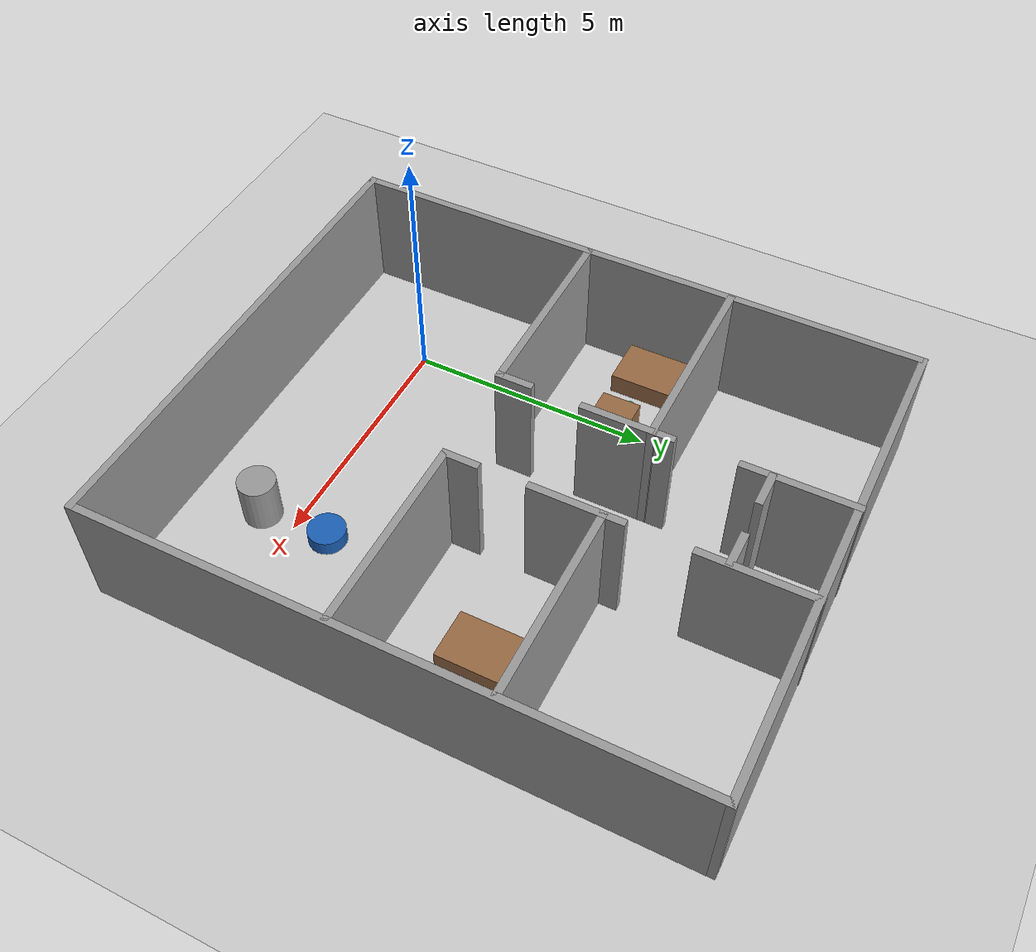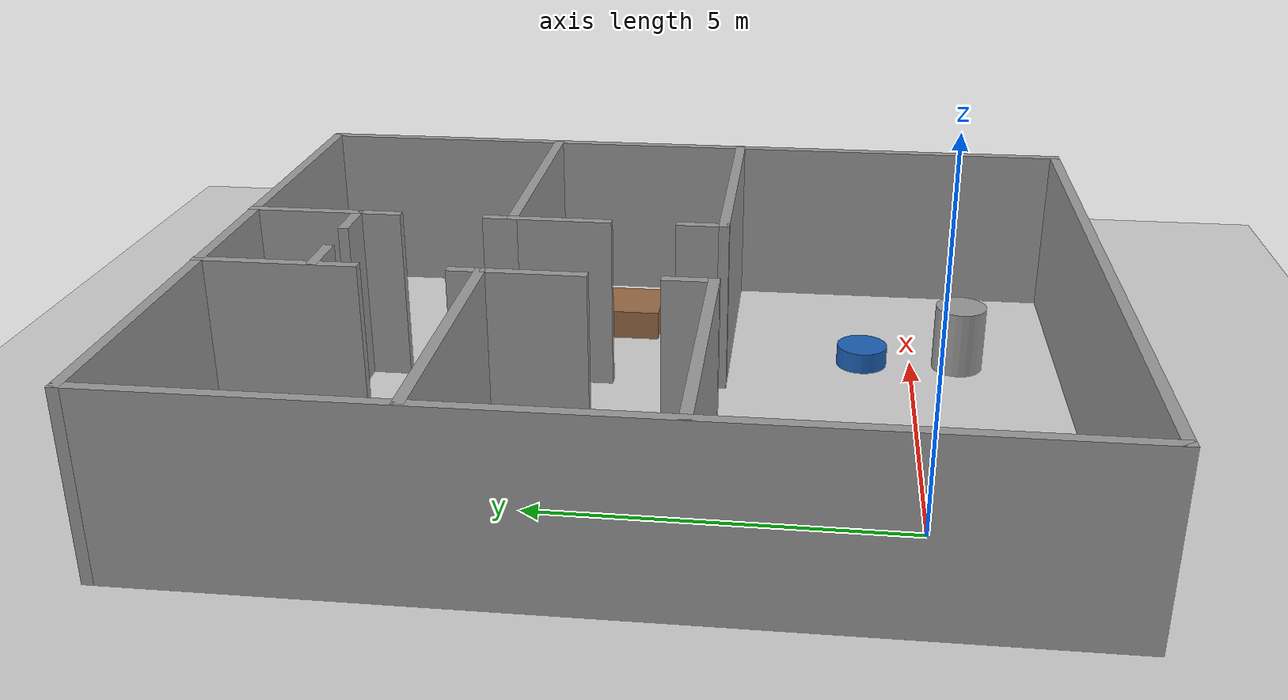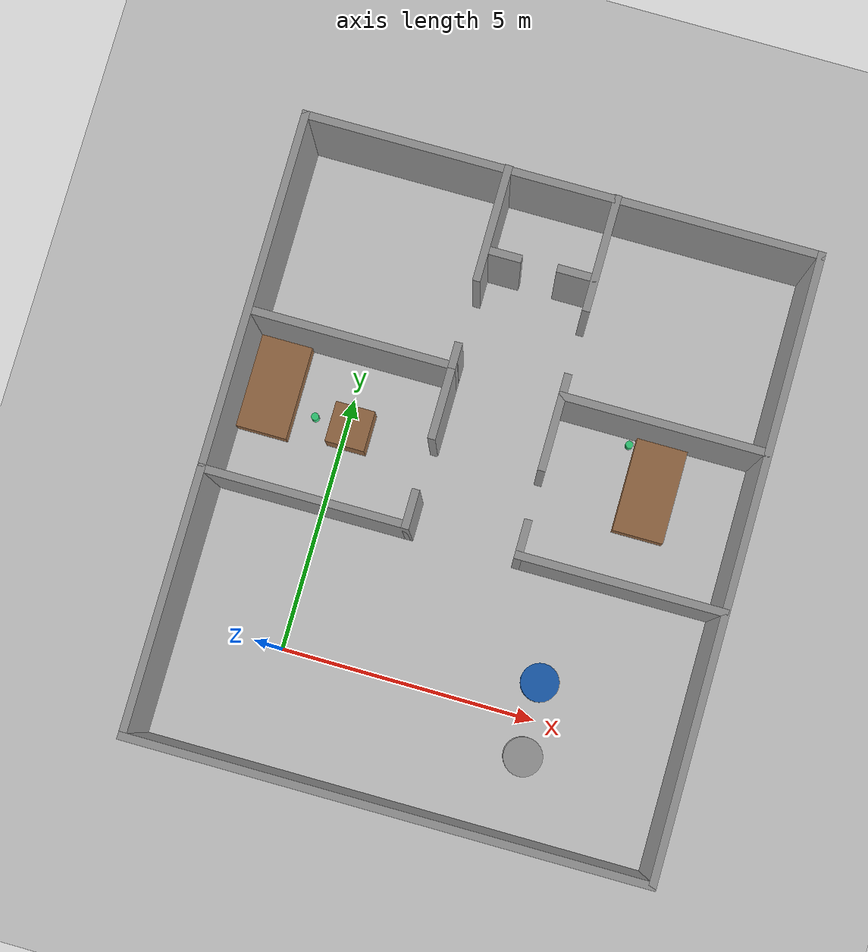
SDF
<sdf version="1.7">
 <world name="default">
  <model name="ground_plane">
   <static>1</static>
   <link name="link">
    <collision name="collision">
     <geometry><plane><normal>0 0 1</normal><size>100 100</size></plane></geometry>
     <surface><friction><ode><mu>100</mu><mu2>50</mu2></ode></friction></surface>
    </collision>
    <visual name="visual">
     <cast_shadows>0</cast_shadows>
     <geometry><plane><normal>0 0 1</normal><size>100 100</size></plane></geometry>
     <material>
      <script><uri>file://media/materials/scripts/gazebo.material</uri><name>Gazebo/Grey</name></script>
     </material>
    </visual>
   </link>
  </model>
  <model name="Untitled">
   <pose>4.12572 3.66792 0 0 -0 0.003554</pose>
   <link name="Wall_0">
    <collision name="Wall_0_Collision">
     <geometry><box><size>10 0.15 2.5</size></box></geometry>
     <pose>0 0 1.25 0 -0 0</pose>
    </collision>
    <visual name="Wall_0_Visual">
     <pose>0 0 1.25 0 -0 0</pose>
     <geometry><box><size>10 0.15 2.5</size></box></geometry>
     <material>
      <script><uri>file://media/materials/scripts/gazebo.material</uri><name>Gazebo/Grey</name></script>
      <ambient>1 1 1 1</ambient>
     </material>
     <meta><layer>0</layer></meta>
    </visual>
    <pose>-1.3075 -5.93156 0 0 -0 3.3e-05</pose>
   </link>
   <link name="Wall_14">
    <collision name="Wall_14_Collision">
     <geometry><box><size>4 0.15 2.5</size></box></geometry>
     <pose>0 0 1.25 0 -0 0</pose>
    </collision>
    <visual name="Wall_14_Visual">
     <pose>0 0 1.25 0 -0 0</pose>
     <geometry><box><size>4 0.15 2.5</size></box></geometry>
     <material>
      <script><uri>file://media/materials/scripts/gazebo.material</uri><name>Gazebo/Grey</name></script>
      <ambient>1 1 1 1</ambient>
     </material>
     <meta><layer>0</layer></meta>
    </visual>
    <pose>1.65589 2.13135 0 0 -0 3.14159</pose>
   </link>
   <link name="Wall_17">
    <collision name="Wall_17_Collision">
     <geometry><box><size>4.00005 0.15 2.5</size></box></geometry>
     <pose>0 0 1.25 0 -0 0</pose>
    </collision>
    <visual name="Wall_17_Visual">
     <pose>0 0 1.25 0 -0 0</pose>
     <geometry><box><size>4.00005 0.15 2.5</size></box></geometry>
     <material>
      <script><uri>file://media/materials/scripts/gazebo.material</uri><name>Gazebo/Grey</name></script>
      <ambient>1 1 1 1</ambient>
     </material>
     <meta><layer>0</layer></meta>
    </visual>
    <pose>-4.27584 2.13172 0 0 -0 0</pose>
   </link>
   <link name="Wall_28">
    <collision name="Wall_28_Collision">
     <geometry><box><size>2.25 0.15 2.5</size></box></geometry>
     <pose>0 0 1.25 0 -0 0</pose>
    </collision>
    <visual name="Wall_28_Visual">
     <pose>0 0 1.25 0 -0 0</pose>
     <geometry><box><size>2.25 0.15 2.5</size></box></geometry>
     <material>
      <script><uri>file://media/materials/scripts/gazebo.material</uri><name>Gazebo/Grey</name></script>
      <ambient>1 1 1 1</ambient>
     </material>
     <meta><layer>0</layer></meta>
    </visual>
    <pose>-2.35084 4.88172 0 0 -0 1.5708</pose>
   </link>
   <link name="Wall_31">
    <collision name="Wall_31_Collision">
     <geometry><box><size>2.25 0.15 2.5</size></box></geometry>
     <pose>0 0 1.25 0 -0 0</pose>
    </collision>
    <visual name="Wall_31_Visual">
     <pose>0 0 1.25 0 -0 0</pose>
     <geometry><box><size>2.25 0.15 2.5</size></box></geometry>
     <material>
      <script><uri>file://media/materials/scripts/gazebo.material</uri><name>Gazebo/Grey</name></script>
      <ambient>1 1 1 1</ambient>
     </material>
     <meta><layer>0</layer></meta>
    </visual>
    <pose>-0.269114 4.88135 0 0 -0 1.5708</pose>
   </link>
   <link name="Wall_33">
    <collision name="Wall_33_Collision">
     <geometry><box><size>0.75 0.15 2.5</size></box></geometry>
     <pose>0 0 1.25 0 -0 0</pose>
    </collision>
    <visual name="Wall_33_Visual">
     <pose>0 0 1.25 0 -0 0</pose>
     <geometry><box><size>0.75 0.15 2.5</size></box></geometry>
     <material>
      <script><uri>file://media/materials/scripts/gazebo.material</uri><name>Gazebo/Grey</name></script>
      <ambient>1 1 1 1</ambient>
     </material>
     <meta><layer>0</layer></meta>
    </visual>
    <pose>-2.03024 4.37324 0 0 -0 0</pose>
   </link>
   <link name="Wall_36">
    <collision name="Wall_36_Collision">
     <geometry><box><size>0.75 0.15 2.5</size></box></geometry>
     <pose>0 0 1.25 0 -0 0</pose>
    </collision>
    <visual name="Wall_36_Visual">
     <pose>0 0 1.25 0 -0 0</pose>
     <geometry><box><size>0.75 0.15 2.5</size></box></geometry>
     <material>
      <script><uri>file://media/materials/scripts/gazebo.material</uri><name>Gazebo/Grey</name></script>
      <ambient>1 1 1 1</ambient>
     </material>
     <meta><layer>0</layer></meta>
    </visual>
    <pose>-0.612674 4.39073 0 0 -0 3.14159</pose>
   </link>
   <link name="Wall_4">
    <collision name="Wall_4_Collision">
     <geometry><box><size>12 0.15 2.5</size></box></geometry>
     <pose>0 0 1.25 0 -0 0</pose>
    </collision>
    <visual name="Wall_4_Visual">
     <pose>0 0 1.25 0 -0 0</pose>
     <geometry><box><size>12 0.15 2.5</size></box></geometry>
     <material>
      <script><uri>file://media/materials/scripts/gazebo.material</uri><name>Gazebo/Grey</name></script>
      <ambient>1 1 1 1</ambient>
     </material>
     <meta><layer>0</layer></meta>
    </visual>
    <pose>-6.2325 -0.006559 0 0 -0 1.57077</pose>
   </link>
   <link name="Wall_40">
    <collision name="Wall_40_Collision">
     <geometry><box><size>4 0.15 2.5</size></box></geometry>
     <pose>0 0 1.25 0 -0 0</pose>
    </collision>
    <visual name="Wall_40_Visual">
     <pose>0 0 1.25 0 -0 0</pose>
     <geometry><box><size>4 0.15 2.5</size></box></geometry>
     <material>
      <script><uri>file://media/materials/scripts/gazebo.material</uri><name>Gazebo/Grey</name></script>
      <ambient>1 1 1 1</ambient>
     </material>
     <meta><layer>0</layer></meta>
    </visual>
    <pose>-4.29477 -0.903426 0 0 -0 0</pose>
   </link>
   <link name="Wall_42">
    <collision name="Wall_42_Collision">
     <geometry><box><size>4 0.15 2.5</size></box></geometry>
     <pose>0 0 1.25 0 -0 0</pose>
    </collision>
    <visual name="Wall_42_Visual">
     <pose>0 0 1.25 0 -0 0</pose>
     <geometry><box><size>4 0.15 2.5</size></box></geometry>
     <material>
      <script><uri>file://media/materials/scripts/gazebo.material</uri><name>Gazebo/Grey</name></script>
      <ambient>1 1 1 1</ambient>
     </material>
     <meta><layer>0</layer></meta>
    </visual>
    <pose>1.66772 -0.885502 0 0 -0 3.14159</pose>
   </link>
   <link name="Wall_49">
    <collision name="Wall_49_Collision">
     <geometry><box><size>1.5 0.15 2.5</size></box></geometry>
     <pose>0 0 1.25 0 -0 0</pose>
    </collision>
    <visual name="Wall_49_Visual">
     <pose>0 0 1.25 0 -0 0</pose>
     <geometry><box><size>1.5 0.15 2.5</size></box></geometry>
     <material>
      <script><uri>file://media/materials/scripts/gazebo.material</uri><name>Gazebo/Grey</name></script>
      <ambient>1 1 1 1</ambient>
     </material>
     <meta><layer>0</layer></meta>
    </visual>
    <pose>-2.35084 1.47683 0 0 -0 -1.5708</pose>
   </link>
   <link name="Wall_51">
    <collision name="Wall_51_Collision">
     <geometry><box><size>1.5 0.15 2.5</size></box></geometry>
     <pose>0 0 1.25 0 -0 0</pose>
    </collision>
    <visual name="Wall_51_Visual">
     <pose>0 0 1.25 0 -0 0</pose>
     <geometry><box><size>1.5 0.15 2.5</size></box></geometry>
     <material>
      <script><uri>file://media/materials/scripts/gazebo.material</uri><name>Gazebo/Grey</name></script>
      <ambient>1 1 1 1</ambient>
     </material>
     <meta><layer>0</layer></meta>
    </visual>
    <pose>-0.269114 1.45635 0 0 -0 -1.5708</pose>
   </link>
   <link name="Wall_53">
    <collision name="Wall_53_Collision">
     <geometry><box><size>0.5 0.15 2.5</size></box></geometry>
     <pose>0 0 1.25 0 -0 0</pose>
    </collision>
    <visual name="Wall_53_Visual">
     <pose>0 0 1.25 0 -0 0</pose>
     <geometry><box><size>0.5 0.15 2.5</size></box></geometry>
     <material>
      <script><uri>file://media/materials/scripts/gazebo.material</uri><name>Gazebo/Grey</name></script>
      <ambient>1 1 1 1</ambient>
     </material>
     <meta><layer>0</layer></meta>
    </visual>
    <pose>-2.35084 2.32683 0 0 -0 1.5708</pose>
   </link>
   <link name="Wall_55">
    <collision name="Wall_55_Collision">
     <geometry><box><size>0.5 0.15 2.5</size></box></geometry>
     <pose>0 0 1.25 0 -0 0</pose>
    </collision>
    <visual name="Wall_55_Visual">
     <pose>0 0 1.25 0 -0 0</pose>
     <geometry><box><size>0.5 0.15 2.5</size></box></geometry>
     <material>
      <script><uri>file://media/materials/scripts/gazebo.material</uri><name>Gazebo/Grey</name></script>
      <ambient>1 1 1 1</ambient>
     </material>
     <meta><layer>0</layer></meta>
    </visual>
    <pose>-0.269114 2.30635 0 0 -0 1.5708</pose>
   </link>
   <link name="Wall_57">
    <collision name="Wall_57_Collision">
     <geometry><box><size>0.75 0.15 2.5</size></box></geometry>
     <pose>0 0 1.25 0 -0 0</pose>
    </collision>
    <visual name="Wall_57_Visual">
     <pose>0 0 1.25 0 -0 0</pose>
     <geometry><box><size>0.75 0.15 2.5</size></box></geometry>
     <material>
      <script><uri>file://media/materials/scripts/gazebo.material</uri><name>Gazebo/Grey</name></script>
      <ambient>1 1 1 1</ambient>
     </material>
     <meta><layer>0</layer></meta>
    </visual>
    <pose>-2.36977 -0.603426 0 0 -0 1.5708</pose>
   </link>
   <link name="Wall_59">
    <collision name="Wall_59_Collision">
     <geometry><box><size>0.75 0.15 2.5</size></box></geometry>
     <pose>0 0 1.25 0 -0 0</pose>
    </collision>
    <visual name="Wall_59_Visual">
     <pose>0 0 1.25 0 -0 0</pose>
     <geometry><box><size>0.75 0.15 2.5</size></box></geometry>
     <material>
      <script><uri>file://media/materials/scripts/gazebo.material</uri><name>Gazebo/Grey</name></script>
      <ambient>1 1 1 1</ambient>
     </material>
     <meta><layer>0</layer></meta>
    </visual>
    <pose>-0.257281 -0.585502 0 0 -0 1.5708</pose>
   </link>
   <link name="Wall_6">
    <collision name="Wall_6_Collision">
     <geometry><box><size>12 0.15 2.5</size></box></geometry>
     <pose>0 0 1.25 0 -0 0</pose>
    </collision>
    <visual name="Wall_6_Visual">
     <pose>0 0 1.25 0 -0 0</pose>
     <geometry><box><size>12 0.15 2.5</size></box></geometry>
     <material>
      <script><uri>file://media/materials/scripts/gazebo.material</uri><name>Gazebo/Grey</name></script>
      <ambient>1 1 1 1</ambient>
     </material>
     <meta><layer>0</layer></meta>
    </visual>
    <pose>3.61766 -0.006398 0 0 -0 1.5708</pose>
   </link>
   <link name="Wall_9">
    <collision name="Wall_9_Collision">
     <geometry><box><size>10.0003 0.15 2.5</size></box></geometry>
     <pose>0 0 1.25 0 -0 0</pose>
    </collision>
    <visual name="Wall_9_Visual">
     <pose>0 0 1.25 0 -0 0</pose>
     <geometry><box><size>10.0003 0.15 2.5</size></box></geometry>
     <material>
      <script><uri>file://media/materials/scripts/gazebo.material</uri><name>Gazebo/Grey</name></script>
      <ambient>1 1 1 1</ambient>
     </material>
     <meta><layer>0</layer></meta>
    </visual>
    <pose>-1.30734 5.9186 0 0 -0 0</pose>
   </link>
   <static>1</static>
  </model>
  <model name="unit_cylinder">
   <pose>4.96851 -0.700253 0.491738 0 -0 0</pose>
   <link name="link">
    <inertial>
     <mass>1</mass>
     <inertia><ixx>0.145833</ixx><ixy>0</ixy><ixz>0</ixz><iyy>0.145833</iyy><iyz>0</iyz><izz>0.125</izz></inertia>
    </inertial>
    <collision name="collision">
     <geometry><cylinder><radius>0.373748</radius><length>0.983494</length></cylinder></geometry>
    </collision>
    <visual name="visual">
     <geometry><cylinder><radius>0.373748</radius><length>0.983494</length></cylinder></geometry>
     <material>
      <script><name>Gazebo/Grey</name><uri>file://media/materials/scripts/gazebo.material</uri></script>
     </material>
    </visual>
   </link>
  </model>
  <model name="lv_lajitong">
   <link name="link">
    <inertial>
     <mass>1</mass>
     <inertia><ixx>0.145833</ixx><ixy>0</ixy><ixz>0</ixz><iyy>0.145833</iyy><iyz>0</iyz><izz>0.125</izz></inertia>
    </inertial>
    <visual name="visual">
     <geometry><cylinder><radius>0.0738659</radius><length>0.256539</length></cylinder></geometry>
     <material>
      <script><name>Gazebo/Grey</name><uri>file://media/materials/scripts/gazebo.material</uri></script>
      <shader type="pixel"><normal_map>__default__</normal_map></shader>
      <ambient>0.2 0.82 0.478 1</ambient>
      <diffuse>0.7 0.7 0.7 1</diffuse>
      <specular>0.01 0.01 0.01 1</specular>
      <emissive>0 0 0 1</emissive>
     </material>
    </visual>
    <collision name="collision">
     <geometry><cylinder><radius>0.073866</radius><length>0.256539</length></cylinder></geometry>
     <surface>
      <friction>
       <ode><mu>1</mu><mu2>1</mu2><fdir1>0 0 0</fdir1><slip1>0</slip1><slip2>0</slip2></ode>
       <torsional>
        <coefficient>1</coefficient>
        <patch_radius>0</patch_radius>
        <surface_radius>0</surface_radius>
        <use_patch_radius>1</use_patch_radius>
        <ode><slip>0</slip></ode>
       </torsional>
      </friction>
      <bounce><restitution_coefficient>0</restitution_coefficient><threshold>1e+06</threshold></bounce>
      <contact>
       <collide_without_contact>0</collide_without_contact>
       <collide_without_contact_bitmask>1</collide_without_contact_bitmask>
       <collide_bitmask>1</collide_bitmask>
       <ode>
        <soft_cfm>0</soft_cfm>
        <soft_erp>0.2</soft_erp>
        <kp>1e+13</kp>
        <kd>1</kd>
        <max_vel>0.01</max_vel>
        <min_depth>0</min_depth>
       </ode>
       <bullet>
        <split_impulse>1</split_impulse>
        <split_impulse_penetration_threshold>-0.01</split_impulse_penetration_threshold>
        <soft_cfm>0</soft_cfm>
        <soft_erp>0.2</soft_erp>
        <kp>1e+13</kp>
        <kd>1</kd>
       </bullet>
      </contact>
     </surface>
    </collision>
   </link>
   <static>0</static>
   <pose>5.3447 5.5957 0.12826 0 -0 0</pose>
  </model>
  <model name="lv_lajitong_clone">
   <link name="link">
    <inertial>
     <mass>1</mass>
     <inertia><ixx>0.145833</ixx><ixy>0</ixy><ixz>0</ixz><iyy>0.145833</iyy><iyz>0</iyz><izz>0.125</izz></inertia>
    </inertial>
    <visual name="visual">
     <geometry><cylinder><radius>0.0738659</radius><length>0.256539</length></cylinder></geometry>
     <material>
      <script><name>Gazebo/Grey</name><uri>file://media/materials/scripts/gazebo.material</uri></script>
      <shader type="pixel"><normal_map>__default__</normal_map></shader>
      <ambient>0.2 0.82 0.478 1</ambient>
      <diffuse>0.7 0.7 0.7 1</diffuse>
      <specular>0.01 0.01 0.01 1</specular>
      <emissive>0 0 0 1</emissive>
     </material>
    </visual>
    <collision name="collision">
     <geometry><cylinder><radius>0.073866</radius><length>0.256539</length></cylinder></geometry>
     <surface>
      <friction>
       <ode><mu>1</mu><mu2>1</mu2><fdir1>0 0 0</fdir1><slip1>0</slip1><slip2>0</slip2></ode>
       <torsional>
        <coefficient>1</coefficient>
        <patch_radius>0</patch_radius>
        <surface_radius>0</surface_radius>
        <use_patch_radius>1</use_patch_radius>
        <ode><slip>0</slip></ode>
       </torsional>
      </friction>
      <bounce><restitution_coefficient>0</restitution_coefficient><threshold>1e+06</threshold></bounce>
      <contact>
       <collide_without_contact>0</collide_without_contact>
       <collide_without_contact_bitmask>1</collide_without_contact_bitmask>
       <collide_bitmask>1</collide_bitmask>
       <ode>
        <soft_cfm>0</soft_cfm>
        <soft_erp>0.2</soft_erp>
        <kp>1e+13</kp>
        <kd>1</kd>
        <max_vel>0.01</max_vel>
        <min_depth>0</min_depth>
       </ode>
       <bullet>
        <split_impulse>1</split_impulse>
        <split_impulse_penetration_threshold>-0.01</split_impulse_penetration_threshold>
        <soft_cfm>0</soft_cfm>
        <soft_erp>0.2</soft_erp>
        <kp>1e+13</kp>
        <kd>1</kd>
       </bullet>
      </contact>
     </surface>
    </collision>
   </link>
   <static>0</static>
   <pose>-0.630519 4.46645 0.12826 0 -0 0</pose>
  </model>
  <model name="lan_canzhaowu1">
   <link name="link">
    <inertial>
     <mass>1</mass>
     <inertia><ixx>0.145833</ixx><ixy>0</ixy><ixz>0</ixz><iyy>0.145833</iyy><iyz>0</iyz><izz>0.125</izz></inertia>
    </inertial>
    <visual name="visual">
     <geometry><cylinder><radius>0.373748</radius><length>0.308137</length></cylinder></geometry>
     <material>
      <script><name>Gazebo/Grey</name><uri>file://media/materials/scripts/gazebo.material</uri></script>
      <shader type="pixel"><normal_map>__default__</normal_map></shader>
      <ambient>0.102 0.373 0.706 1</ambient>
      <diffuse>0.7 0.7 0.7 1</diffuse>
      <specular>0.01 0.01 0.01 1</specular>
      <emissive>0 0 0 1</emissive>
     </material>
    </visual>
    <collision name="collision">
     <geometry><cylinder><radius>0.373748</radius><length>0.308137</length></cylinder></geometry>
     <surface>
      <friction>
       <ode><mu>1</mu><mu2>1</mu2><fdir1>0 0 0</fdir1><slip1>0</slip1><slip2>0</slip2></ode>
       <torsional>
        <coefficient>1</coefficient>
        <patch_radius>0</patch_radius>
        <surface_radius>0</surface_radius>
        <use_patch_radius>1</use_patch_radius>
        <ode><slip>0</slip></ode>
       </torsional>
      </friction>
      <bounce><restitution_coefficient>0</restitution_coefficient><threshold>1e+06</threshold></bounce>
      <contact>
       <collide_without_contact>0</collide_without_contact>
       <collide_without_contact_bitmask>1</collide_without_contact_bitmask>
       <collide_bitmask>1</collide_bitmask>
       <ode>
        <soft_cfm>0</soft_cfm>
        <soft_erp>0.2</soft_erp>
        <kp>1e+13</kp>
        <kd>1</kd>
        <max_vel>0.01</max_vel>
        <min_depth>0</min_depth>
       </ode>
       <bullet>
        <split_impulse>1</split_impulse>
        <split_impulse_penetration_threshold>-0.01</split_impulse_penetration_threshold>
        <soft_cfm>0</soft_cfm>
        <soft_erp>0.2</soft_erp>
        <kp>1e+13</kp>
        <kd>1</kd>
       </bullet>
      </contact>
     </surface>
    </collision>
   </link>
   <static>0</static>
   <pose>4.91793 0.727272 0.154059 0 -0 0</pose>
  </model>
  <model name="zong_chuang">
   <link name="link">
    <inertial>
     <mass>1</mass>
     <inertia>
      <ixx>0.166667</ixx>
      <ixy>0</ixy>
      <ixz>0</ixz>
      <iyy>0.166667</iyy>
      <iyz>0</iyz>
      <izz>0.166667</izz>
     </inertia>
    </inertial>
    <visual name="visual">
     <geometry><box><size>1 1.83631 0.441286</size></box></geometry>
     <material>
      <script><name>Gazebo/Grey</name><uri>file://media/materials/scripts/gazebo.material</uri></script>
      <shader type="pixel"><normal_map>__default__</normal_map></shader>
      <ambient>0.596 0.416 0.267 1</ambient>
      <diffuse>0.7 0.7 0.7 1</diffuse>
      <specular>0.01 0.01 0.01 1</specular>
      <emissive>0 0 0 1</emissive>
     </material>
    </visual>
    <collision name="collision">
     <geometry><box><size>1 1.83631 0.441286</size></box></geometry>
     <surface>
      <friction>
       <ode><mu>1</mu><mu2>1</mu2><fdir1>0 0 0</fdir1><slip1>0</slip1><slip2>0</slip2></ode>
       <torsional>
        <coefficient>1</coefficient>
        <patch_radius>0</patch_radius>
        <surface_radius>0</surface_radius>
        <use_patch_radius>1</use_patch_radius>
        <ode><slip>0</slip></ode>
       </torsional>
      </friction>
      <bounce><restitution_coefficient>0</restitution_coefficient><threshold>1e+06</threshold></bounce>
      <contact>
       <collide_without_contact>0</collide_without_contact>
       <collide_without_contact_bitmask>1</collide_without_contact_bitmask>
       <collide_bitmask>1</collide_bitmask>
       <ode>
        <soft_cfm>0</soft_cfm>
        <soft_erp>0.2</soft_erp>
        <kp>1e+13</kp>
        <kd>1</kd>
        <max_vel>0.01</max_vel>
        <min_depth>0</min_depth>
       </ode>
       <bullet>
        <split_impulse>1</split_impulse>
        <split_impulse_penetration_threshold>-0.01</split_impulse_penetration_threshold>
        <soft_cfm>0</soft_cfm>
        <soft_erp>0.2</soft_erp>
        <kp>1e+13</kp>
        <kd>1</kd>
       </bullet>
      </contact>
     </surface>
    </collision>
   </link>
   <static>0</static>
   <pose>-1.5254 4.7864 0.220638 0 1e-05 0.003558</pose>
  </model>
  <model name="zong_chuang_clone">
   <link name="link">
    <inertial>
     <mass>1</mass>
     <inertia>
      <ixx>0.166667</ixx>
      <ixy>0</ixy>
      <ixz>0</ixz>
      <iyy>0.166667</iyy>
      <iyz>0</iyz>
      <izz>0.166667</izz>
     </inertia>
    </inertial>
    <visual name="visual">
     <geometry><box><size>1 1.83631 0.441286</size></box></geometry>
     <material>
      <script><name>Gazebo/Grey</name><uri>file://media/materials/scripts/gazebo.material</uri></script>
      <shader type="pixel"><normal_map>__default__</normal_map></shader>
      <ambient>0.596 0.416 0.267 1</ambient>
      <diffuse>0.7 0.7 0.7 1</diffuse>
      <specular>0.01 0.01 0.01 1</specular>
      <emissive>0 0 0 1</emissive>
     </material>
    </visual>
    <collision name="collision">
     <geometry><box><size>1 1.83631 0.441286</size></box></geometry>
     <surface>
      <friction>
       <ode><mu>1</mu><mu2>1</mu2><fdir1>0 0 0</fdir1><slip1>0</slip1><slip2>0</slip2></ode>
       <torsional>
        <coefficient>1</coefficient>
        <patch_radius>0</patch_radius>
        <surface_radius>0</surface_radius>
        <use_patch_radius>1</use_patch_radius>
        <ode><slip>0</slip></ode>
       </torsional>
      </friction>
      <bounce><restitution_coefficient>0</restitution_coefficient><threshold>1e+06</threshold></bounce>
      <contact>
       <collide_without_contact>0</collide_without_contact>
       <collide_without_contact_bitmask>1</collide_without_contact_bitmask>
       <collide_bitmask>1</collide_bitmask>
       <ode>
        <soft_cfm>0</soft_cfm>
        <soft_erp>0.2</soft_erp>
        <kp>1e+13</kp>
        <kd>1</kd>
        <max_vel>0.01</max_vel>
        <min_depth>0</min_depth>
       </ode>
       <bullet>
        <split_impulse>1</split_impulse>
        <split_impulse_penetration_threshold>-0.01</split_impulse_penetration_threshold>
        <soft_cfm>0</soft_cfm>
        <soft_erp>0.2</soft_erp>
        <kp>1e+13</kp>
        <kd>1</kd>
       </bullet>
      </contact>
     </surface>
    </collision>
   </link>
   <static>0</static>
   <pose>5.95639 4.81261 0.220638 0 1e-05 0.003569</pose>
  </model>
  <model name="zhuozi">
   <link name="link">
    <inertial>
     <mass>1</mass>
     <inertia>
      <ixx>0.166667</ixx>
      <ixy>0</ixy>
      <ixz>0</ixz>
      <iyy>0.166667</iyy>
      <iyz>0</iyz>
      <izz>0.166667</izz>
     </inertia>
    </inertial>
    <visual name="visual">
     <geometry><box><size>0.774311 0.79644 0.712189</size></box></geometry>
     <material>
      <script><name>Gazebo/Grey</name><uri>file://media/materials/scripts/gazebo.material</uri></script>
      <shader type="pixel"><normal_map>__default__</normal_map></shader>
      <ambient>0.596 0.416 0.267 1</ambient>
      <diffuse>0.7 0.7 0.7 1</diffuse>
      <specular>0.01 0.01 0.01 1</specular>
      <emissive>0 0 0 1</emissive>
     </material>
    </visual>
    <collision name="collision">
     <geometry><box><size>0.774311 0.79644 0.712189</size></box></geometry>
     <surface>
      <friction>
       <ode><mu>1</mu><mu2>1</mu2><fdir1>0 0 0</fdir1><slip1>0</slip1><slip2>0</slip2></ode>
       <torsional>
        <coefficient>1</coefficient>
        <patch_radius>0</patch_radius>
        <surface_radius>0</surface_radius>
        <use_patch_radius>1</use_patch_radius>
        <ode><slip>0</slip></ode>
       </torsional>
      </friction>
      <bounce><restitution_coefficient>0</restitution_coefficient><threshold>1e+06</threshold></bounce>
      <contact>
       <collide_without_contact>0</collide_without_contact>
       <collide_without_contact_bitmask>1</collide_without_contact_bitmask>
       <collide_bitmask>1</collide_bitmask>
       <ode>
        <soft_cfm>0</soft_cfm>
        <soft_erp>0.2</soft_erp>
        <kp>1e+13</kp>
        <kd>1</kd>
        <max_vel>0.01</max_vel>
        <min_depth>0</min_depth>
       </ode>
       <bullet>
        <split_impulse>1</split_impulse>
        <split_impulse_penetration_threshold>-0.01</split_impulse_penetration_threshold>
        <soft_cfm>0</soft_cfm>
        <soft_erp>0.2</soft_erp>
        <kp>1e+13</kp>
        <kd>1</kd>
       </bullet>
      </contact>
     </surface>
    </collision>
   </link>
   <static>0</static>
   <pose>0.112848 4.41532 0.356094 0 -0 0.003551</pose>
  </model>
 </world>
</sdf>
